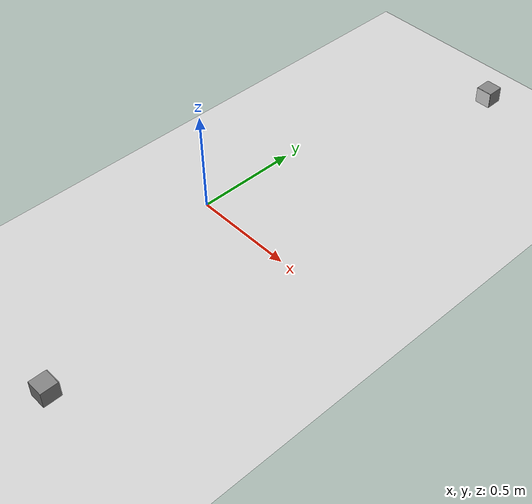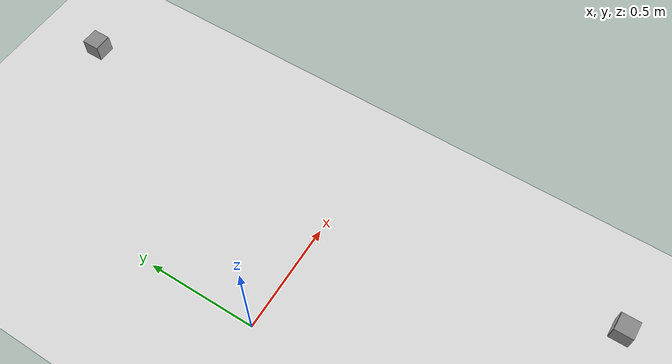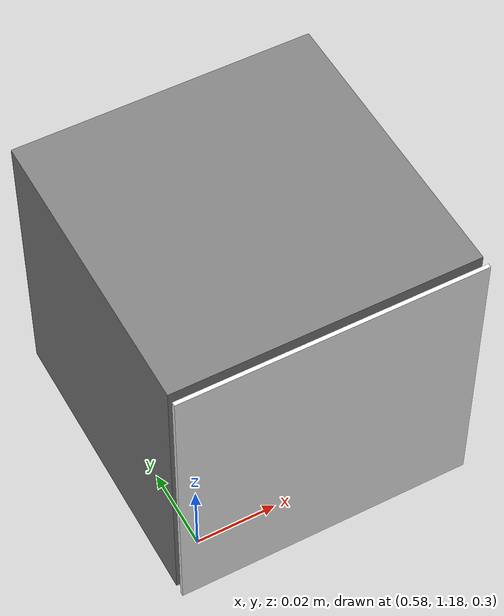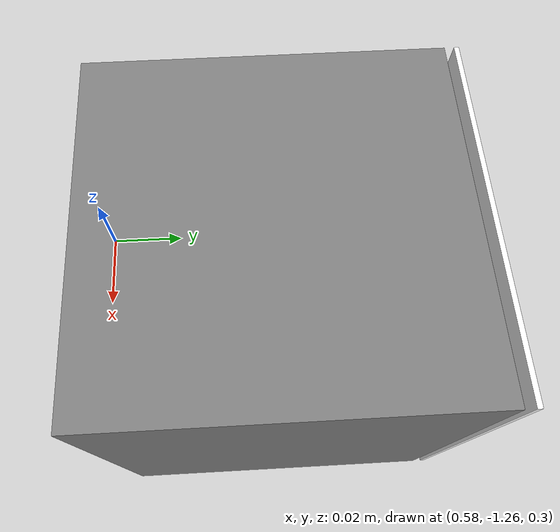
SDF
<?xml version="1.0" ?>
<sdf version="1.4">
  <!-- We use a custom world for the rrbot so that the camera angle is launched correctly -->

  <world name="default">
    <!-- Included light -->
    <include>
      <uri>https://fuel.gazebosim.org/1.0/OpenRobotics/models/Sun</uri>
    </include>

    <!-- Included model -->
    <include>
      <uri>https://fuel.gazebosim.org/1.0/OpenRobotics/models/Ground Plane</uri>
    </include>

    <include>
      <uri>
        model://arucotag1
      </uri>
      <name>arucotag1</name>
      <pose>0.6105 1.1746 0.328 1.5708 0 0</pose>
    </include>

    <include>
      <uri>
        model://arucotag2
      </uri>
      <name>arucotag2</name>
      <pose>0.6105 -1.1746 0.328 -1.5708 0 0</pose>
    </include>

  </world>
</sdf>

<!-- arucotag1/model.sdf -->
<sdf version='1.9'>
  <model name='arucotag1'>
    <static>true</static>

    <link name='link'>

      <visual name="box">
        <pose>0 0 -0.04 0 0 0</pose>
        <geometry>
          <box><size>0.075 0.075 0.075</size></box>
        </geometry>
        <material><diffuse>0.5 0.5 0.5 1</diffuse></material>
      </visual>

      <visual name="tag">
        <geometry>
          <box>
            <size>0.075 0.075 0.001</size>
          </box>
        </geometry>
        <material>
          <diffuse>1 1 1 1</diffuse>
          <specular>0.4 0.4 0.4 1</specular>
          <pbr>
            <metal>
              <albedo_map>model://arucotag1/materials/textures/aruco-201.png</albedo_map>
            </metal>
          </pbr>
        </material>
      </visual>

    </link>

  </model>
</sdf>

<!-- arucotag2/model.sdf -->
<sdf version='1.9'>
  <model name='arucotag2'>
    <static>true</static>

    <link name='link'>

      <visual name="box">
        <pose>0 0 -0.04 0 0 0</pose> <!-- 2 cm spostata rispetto al tag -->
        <geometry>
          <box><size>0.075 0.075 0.075</size></box>
        </geometry>
        <material><diffuse>0.5 0.5 0.5 1</diffuse></material>
      </visual>

      <visual name="tag">
        <geometry>
          <box>
            <size>0.075 0.075 0.001</size>
          </box>
        </geometry>
        <material>
          <diffuse>1 1 1 1</diffuse>
          <specular>0.4 0.4 0.4 1</specular>
          <pbr>
            <metal>
              <albedo_map>model://arucotag2/materials/textures/aruco-301.png</albedo_map>
            </metal>
          </pbr>
        </material>
      </visual>

    </link>

  </model>
</sdf>
